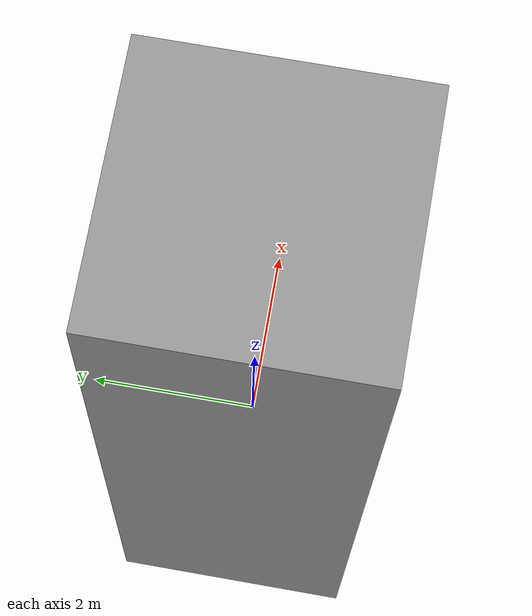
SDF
<sdf version="1.6">
  <model name="fs_gray_wall">
    <static>false</static>
    <link name="link">
      <pose>0 0 1.4 0 0 0</pose>
	  <inertial>
        <mass>36.0</mass>
        <inertia>
          <ixx>28.0</ixx>
          <ixy>0</ixy>
          <ixz>0</ixz>
          <iyy>10.0</iyy>
          <iyz>0</iyz>
          <izz>15.0</izz>
        </inertia>
        <pose frame="">0 0 0 0 -0 0</pose>
      </inertial>
      <collision name="collision">
        <geometry>
          <box>
            <size>3 3 10</size>
          </box>
        </geometry>
        <surface>
            <bounce>
                <restitution_coefficient>0.9</restitution_coefficient>
                <threshold>0.01</threshold>
            </bounce>
            <contact>
                <ode>
                    <max_vel>100</max_vel>
                </ode>
            </contact>
        </surface>
      </collision>
      <visual name="visual">
        <cast_shadows>false</cast_shadows>
        <geometry>
          <box>
            <size>3 3 10</size>
          </box>
        </geometry>
        <material>
          <script>
            <uri>model://fs_gray_wall/materials/scripts</uri>
            <uri>model://fs_gray_wall/materials/textures</uri>
            <name>vrc/fs_gray_wall</name>
          </script>
        </material>
      </visual>
	  <self_collide>0</self_collide>
      <kinematic>0</kinematic>
      <gravity>1</gravity>
    </link>
  </model>
</sdf>
